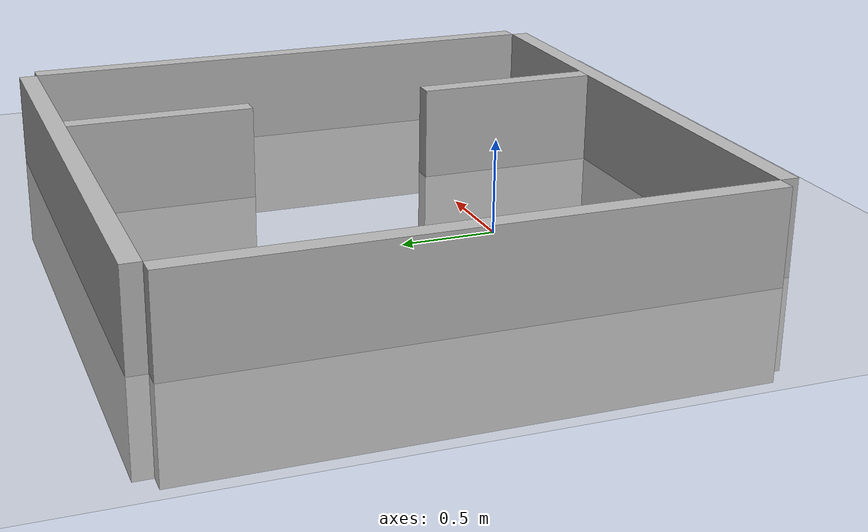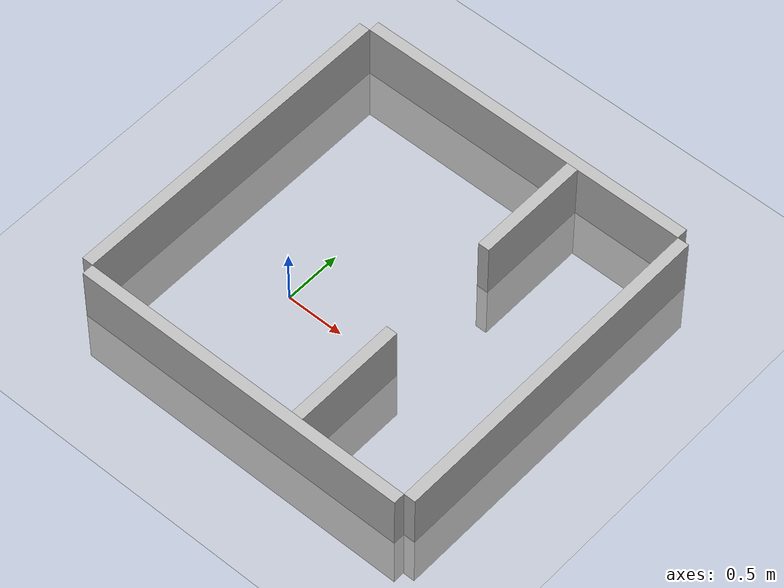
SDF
<sdf version='1.6'>
  <world name='default'>
    <light name='sun' type='directional'>
      <cast_shadows>1</cast_shadows>
      <pose frame=''>0 0 10 0 -0 0</pose>
      <diffuse>0.8 0.8 0.8 1</diffuse>
      <specular>0.2 0.2 0.2 1</specular>
      <attenuation>
        <range>1000</range>
        <constant>0.9</constant>
        <linear>0.01</linear>
        <quadratic>0.001</quadratic>
      </attenuation>
      <direction>-0.5 0.1 -0.9</direction>
    </light>
    <gravity>0 0 -9.8</gravity>
    <magnetic_field>6e-06 2.3e-05 -4.2e-05</magnetic_field>
    <atmosphere type='adiabatic'/>
    <physics name='default_physics' default='0' type='ode'>
      <max_step_size>0.001</max_step_size>
      <real_time_factor>1</real_time_factor>
      <real_time_update_rate>1000</real_time_update_rate>
    </physics>
    <scene>
      <ambient>0.4 0.4 0.4 1</ambient>
      <background>0.7 0.7 0.7 1</background>
      <shadows>1</shadows>
    </scene>
    <audio>
      <device>default</device>
    </audio>
    <wind/>
    <spherical_coordinates>
      <surface_model>EARTH_WGS84</surface_model>
      <latitude_deg>0</latitude_deg>
      <longitude_deg>0</longitude_deg>
      <elevation>0</elevation>
      <heading_deg>0</heading_deg>
    </spherical_coordinates>
		<include>
			<uri>model://ground_plane</uri>
		</include>

		<model name="house">
      <pose>0 0 0 0 0 0</pose>
      <static>true</static>
			<link name="link">
				<collision name="collision_w1">
		      <pose>-1.05 0.5 0 0 0 0</pose>
					<geometry>
						<box>
							<size> 0.1 3 1</size>
						</box>
					</geometry>
				</collision>
				<visual name="visual_w1">
		      <pose>-1.05 0.5 0 0 0 0</pose>
					<geometry>
						<box>
							<size> 0.1 3 1</size>
						</box>
					</geometry>
				</visual>

				<collision name="collision_w2">
		      <pose>2.05 0.5 0 0 0 0</pose>
					<geometry>
						<box>
							<size> 0.1 3 1</size>
						</box>
					</geometry>
				</collision>
				<visual name="visual_w2">
		      <pose>2.05 0.5 0 0 0 0</pose>
					<geometry>
						<box>
							<size> 0.1 3 1</size>
						</box>
					</geometry>
				</visual>

				<collision name="collision_w2b">
		      <pose>1 -0.5 0 0 0 0</pose>
					<geometry>
						<box>
							<size> 0.1 1 1</size>
						</box>
					</geometry>
				</collision>
				<visual name="visual_w2b">
		      <pose>1 -0.5 0 0 0 0</pose>
					<geometry>
						<box>
							<size> 0.1 1 1</size>
						</box>
					</geometry>
				</visual>

				<collision name="collision_w2c">
		      <pose>1 1.5 0 0 0 0</pose>
					<geometry>
						<box>
							<size> 0.1 1 1</size>
						</box>
					</geometry>
				</collision>
				<visual name="visual_w2c">
		      <pose>1 1.5 0 0 0 0</pose>
					<geometry>
						<box>
							<size> 0.1 1 1</size>
						</box>
					</geometry>
				</visual>

				<collision name="collision_w3">
		      <pose>0.5 -1.05 0 0 0 0</pose>
					<geometry>
						<box>
							<size>3 0.1 1</size>
						</box>
					</geometry>
				</collision>
				<visual name="visual_w3">
		      <pose>0.5 -1.05 0 0 0 0</pose>
					<geometry>
						<box>
							<size>3 0.1 1</size>
						</box>
					</geometry>
				</visual>

				<collision name="collision_w4">
		      <pose>0.5 2.05 0 0 0 0</pose>
					<geometry>
						<box>
							<size>3 0.1 1</size>
						</box>
					</geometry>
				</collision>
				<visual name="visual_w4">
		      <pose>0.5 2.05 0 0 0 0</pose>
					<geometry>
						<box>
							<size>3 0.1 1</size>
						</box>
					</geometry>
				</visual>
			</link>
		</model>
  </world>

</sdf>
